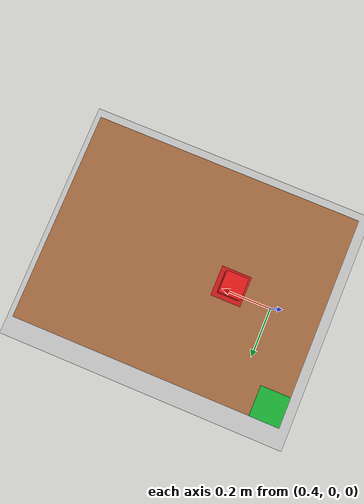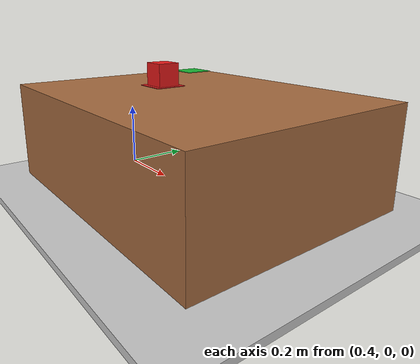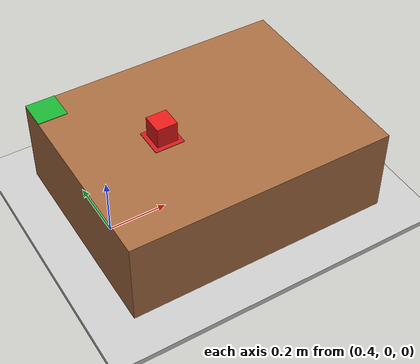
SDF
<?xml version="1.0"?>
<sdf version="1.7">
  <world name="pick_place">
    <physics name="default_physics" type="ode">
      <max_step_size>0.001</max_step_size>
      <real_time_factor>1.0</real_time_factor>
    </physics>

    <gravity>0 0 -9.81</gravity>

    <scene>
      <ambient>0.7 0.7 0.7 1</ambient>
      <background>0.82 0.86 0.90 1</background>
      <shadows>true</shadows>
    </scene>

    <light name="sun" type="directional">
      <pose>0 0 6 0 0 0</pose>
      <diffuse>1 1 1 1</diffuse>
      <specular>0.3 0.3 0.3 1</specular>
      <direction>-0.4 0.3 -1</direction>
    </light>

    <model name="ground">
      <static>true</static>
      <pose>0 0 -0.01 0 0 0</pose>
      <link name="ground_link">
        <collision name="collision">
          <geometry>
            <box>
              <size>4 4 0.02</size>
            </box>
          </geometry>
        </collision>

        <visual name="visual">
          <geometry>
            <box>
              <size>4 4 0.02</size>
            </box>
          </geometry>
          <material>
            <ambient>0.78 0.78 0.78 1</ambient>
            <diffuse>0.78 0.78 0.78 1</diffuse>
            <specular>0.05 0.05 0.05 1</specular>
          </material>
        </visual>
      </link>
    </model>

    <!-- 桌面: 顶面高度 z = 0.30 -->
    <model name="table">
      <static>true</static>
      <pose>0.75 0 0.15 0 0 0</pose>
      <link name="table_top">
        <collision name="collision">
          <geometry>
            <box>
              <size>0.90 0.70 0.30</size>
            </box>
          </geometry>
          <surface>
            <friction>
              <ode>
                <mu>1.2</mu>
                <mu2>1.2</mu2>
              </ode>
            </friction>
          </surface>
        </collision>

        <visual name="visual">
          <geometry>
            <box>
              <size>0.90 0.70 0.30</size>
            </box>
          </geometry>
          <material>
            <ambient>0.55 0.35 0.2 1</ambient>
            <diffuse>0.65 0.42 0.25 1</diffuse>
            <specular>0.05 0.05 0.05 1</specular>
          </material>
        </visual>
      </link>
    </model>

    <!-- 取物点 A 标记 (红色) -->
    <model name="pick_marker">
      <static>true</static>
      <pose>0.60 0 0.301 0 0 0</pose>
      <link name="pad">
        <collision name="collision">
          <geometry>
            <box>
              <size>0.10 0.10 0.002</size>
            </box>
          </geometry>
        </collision>

        <visual name="visual">
          <geometry>
            <box>
              <size>0.10 0.10 0.002</size>
            </box>
          </geometry>
          <material>
            <ambient>0.8 0.1 0.1 1</ambient>
            <diffuse>0.8 0.1 0.1 1</diffuse>
            <specular>0.1 0.1 0.1 1</specular>
          </material>
        </visual>
      </link>
    </model>

    <!-- 放置点 B 标记 (绿色) -->
    <model name="place_marker">
      <static>true</static>
      <pose>0.35 0.30 0.301 0 0 0</pose>
      <link name="pad">
        <collision name="collision">
          <geometry>
            <box>
              <size>0.10 0.10 0.002</size>
            </box>
          </geometry>
        </collision>

        <visual name="visual">
          <geometry>
            <box>
              <size>0.10 0.10 0.002</size>
            </box>
          </geometry>
          <material>
            <ambient>0.1 0.7 0.2 1</ambient>
            <diffuse>0.1 0.7 0.2 1</diffuse>
            <specular>0.1 0.1 0.1 1</specular>
          </material>
        </visual>
      </link>
    </model>

    <!-- 目标物体: 初始放在取物点 A (0.60, 0), 中心高度 0.302 + 0.035 = 0.337 -->
    <model name="target_object">
      <pose>0.60 0 0.337 0 0 0</pose>
      <link name="box">
        <inertial>
          <mass>0.04</mass>
          <inertia>
            <ixx>0.00003</ixx>
            <iyy>0.00003</iyy>
            <izz>0.00003</izz>
          </inertia>
        </inertial>

        <collision name="collision">
          <geometry>
            <box>
              <size>0.07 0.07 0.07</size>
            </box>
          </geometry>
          <surface>
            <friction>
              <ode>
                <mu>1.5</mu>
                <mu2>1.5</mu2>
              </ode>
            </friction>
          </surface>
        </collision>

        <visual name="visual">
          <geometry>
            <box>
              <size>0.07 0.07 0.07</size>
            </box>
          </geometry>
          <material>
            <ambient>0.9 0.1 0.1 1</ambient>
            <diffuse>0.9 0.1 0.1 1</diffuse>
            <specular>0.2 0.2 0.2 1</specular>
          </material>
        </visual>
      </link>
    </model>
  </world>
</sdf>
